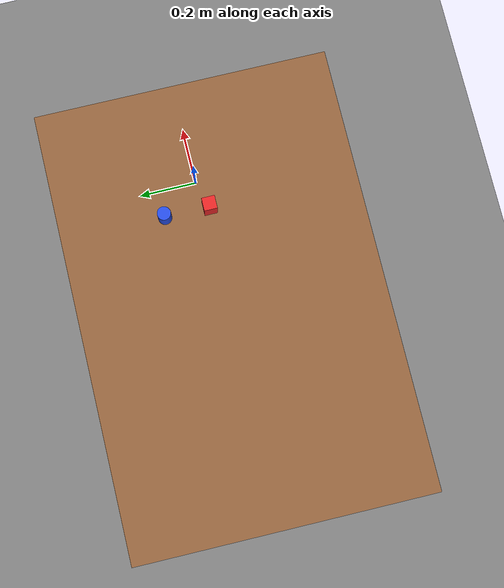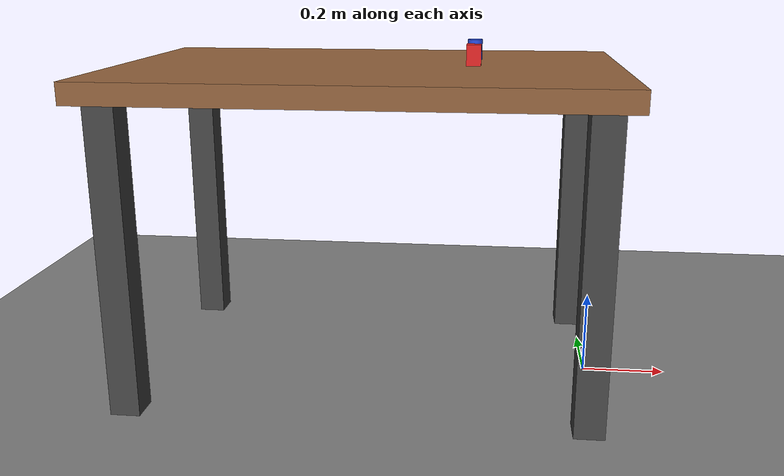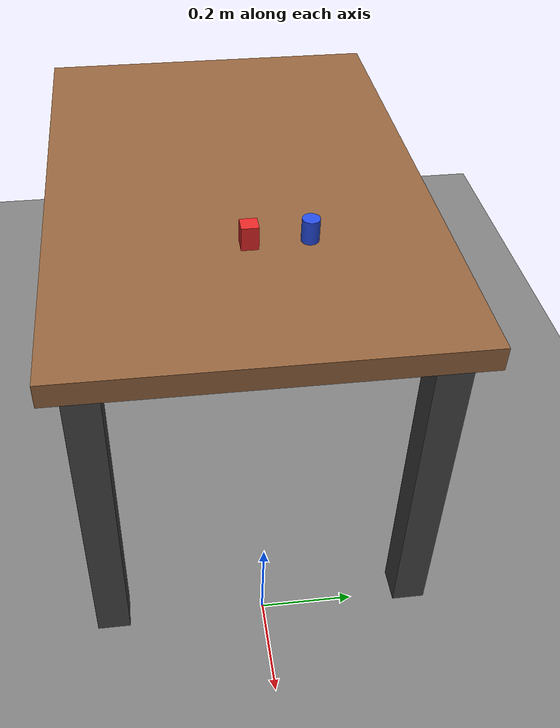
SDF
<?xml version="1.0" ?>
<sdf version="1.8">
  <world name="empty">
    <gravity>0 0 -9.8</gravity>

    <plugin filename="gz-sim-physics-system" name="gz::sim::systems::Physics"/>
    <plugin filename="gz-sim-user-commands-system" name="gz::sim::systems::UserCommands"/>
    <plugin filename="gz-sim-scene-broadcaster-system" name="gz::sim::systems::SceneBroadcaster"/>
    <plugin filename="gz-sim-sensors-system" name="gz::sim::systems::Sensors"/>

    <light type="directional" name="sun">
      <cast_shadows>true</cast_shadows>
      <pose>0 0 10 0 0 0</pose>
      <diffuse>0.8 0.8 0.8 1</diffuse>
      <specular>0.2 0.2 0.2 1</specular>
      <attenuation>
        <range>1000</range>
        <constant>0.9</constant>
        <linear>0.01</linear>
        <quadratic>0.001</quadratic>
      </attenuation>
      <direction>-0.5 0.1 -0.9</direction>
    </light>

    <model name="ground_plane">
      <static>true</static>
      <pose>0 0 -0.05 0 0 0</pose>
      <link name="link">
        <collision name="collision">
          <geometry>
            <box>
              <size>100 100 0.1</size>
            </box>
          </geometry>
        </collision>
        <visual name="visual">
          <geometry>
            <box>
              <size>100 100 0.1</size>
            </box>
          </geometry>
          <material>
            <ambient>0.3 0.3 0.3 1</ambient>
            <diffuse>0.5 0.5 0.5 1</diffuse>
            <specular>0.1 0.1 0.1 1</specular>
          </material>
        </visual>
      </link>
    </model>

    <model name="workbench_table">
      <static>true</static>
      <pose>-0.55 0 0 0 0 0</pose>
      <link name="table_link">
        <collision name="top_collision">
          <pose>0 0 0.75 0 0 0</pose>
          <geometry>
            <box>
              <size>1.2 0.8 0.05</size>
            </box>
          </geometry>
        </collision>
        <visual name="top_visual">
          <pose>0 0 0.75 0 0 0</pose>
          <geometry>
            <box>
              <size>1.2 0.8 0.05</size>
            </box>
          </geometry>
          <material>
            <ambient>0.48 0.32 0.20 1</ambient>
            <diffuse>0.58 0.39 0.24 1</diffuse>
            <specular>0.12 0.12 0.12 1</specular>
          </material>
        </visual>

        <collision name="leg_fl_collision">
          <pose>0.53 0.33 0.375 0 0 0</pose>
          <geometry><box><size>0.07 0.07 0.75</size></box></geometry>
        </collision>
        <collision name="leg_fr_collision">
          <pose>0.53 -0.33 0.375 0 0 0</pose>
          <geometry><box><size>0.07 0.07 0.75</size></box></geometry>
        </collision>
        <collision name="leg_rl_collision">
          <pose>-0.53 0.33 0.375 0 0 0</pose>
          <geometry><box><size>0.07 0.07 0.75</size></box></geometry>
        </collision>
        <collision name="leg_rr_collision">
          <pose>-0.53 -0.33 0.375 0 0 0</pose>
          <geometry><box><size>0.07 0.07 0.75</size></box></geometry>
        </collision>

        <visual name="leg_fl_visual">
          <pose>0.53 0.33 0.375 0 0 0</pose>
          <geometry><box><size>0.07 0.07 0.75</size></box></geometry>
          <material><ambient>0.2 0.2 0.2 1</ambient><diffuse>0.28 0.28 0.28 1</diffuse></material>
        </visual>
        <visual name="leg_fr_visual">
          <pose>0.53 -0.33 0.375 0 0 0</pose>
          <geometry><box><size>0.07 0.07 0.75</size></box></geometry>
          <material><ambient>0.2 0.2 0.2 1</ambient><diffuse>0.28 0.28 0.28 1</diffuse></material>
        </visual>
        <visual name="leg_rl_visual">
          <pose>-0.53 0.33 0.375 0 0 0</pose>
          <geometry><box><size>0.07 0.07 0.75</size></box></geometry>
          <material><ambient>0.2 0.2 0.2 1</ambient><diffuse>0.28 0.28 0.28 1</diffuse></material>
        </visual>
        <visual name="leg_rr_visual">
          <pose>-0.53 -0.33 0.375 0 0 0</pose>
          <geometry><box><size>0.07 0.07 0.75</size></box></geometry>
          <material><ambient>0.2 0.2 0.2 1</ambient><diffuse>0.28 0.28 0.28 1</diffuse></material>
        </visual>
      </link>
    </model>

    <!-- Graspable box: 3.5cm x 3.5cm x 5cm, placed ~25cm in front of robot -->
    <model name="red_box">
      <pose>-0.30 0.0 0.8 0 0 0</pose>
      <link name="box_link">
        <inertial>
          <mass>0.05</mass>
          <inertia>
            <ixx>3.54e-05</ixx><iyy>3.54e-05</iyy><izz>2.04e-05</izz>
            <ixy>0</ixy><ixz>0</ixz><iyz>0</iyz>
          </inertia>
        </inertial>
        <collision name="collision">
          <geometry><box><size>0.035 0.035 0.05</size></box></geometry>
          <surface>
            <friction><ode><mu>0.8</mu><mu2>0.8</mu2></ode></friction>
          </surface>
        </collision>
        <visual name="visual">
          <geometry><box><size>0.035 0.035 0.05</size></box></geometry>
          <material>
            <ambient>0.8 0.1 0.1 1</ambient>
            <diffuse>0.9 0.15 0.15 1</diffuse>
            <specular>0.2 0.2 0.2 1</specular>
          </material>
        </visual>
      </link>
    </model>

    <!-- Graspable cylinder: radius 1.8cm, height 5cm, placed ~25cm in front offset to side -->
    <model name="blue_cylinder">
      <pose>-0.30 0.12 0.8025 0 0 0</pose>
      <link name="cylinder_link">
        <inertial>
          <mass>0.05</mass>
          <inertia>
            <ixx>3.70e-05</ixx><iyy>3.70e-05</iyy><izz>8.10e-06</izz>
            <ixy>0</ixy><ixz>0</ixz><iyz>0</iyz>
          </inertia>
        </inertial>
        <collision name="collision">
          <geometry><cylinder><radius>0.018</radius><length>0.05</length></cylinder></geometry>
          <surface>
            <friction><ode><mu>0.8</mu><mu2>0.8</mu2></ode></friction>
          </surface>
        </collision>
        <visual name="visual">
          <geometry><cylinder><radius>0.018</radius><length>0.05</length></cylinder></geometry>
          <material>
            <ambient>0.1 0.2 0.8 1</ambient>
            <diffuse>0.15 0.3 0.9 1</diffuse>
            <specular>0.2 0.2 0.2 1</specular>
          </material>
        </visual>
      </link>
    </model>

  </world>
</sdf>
